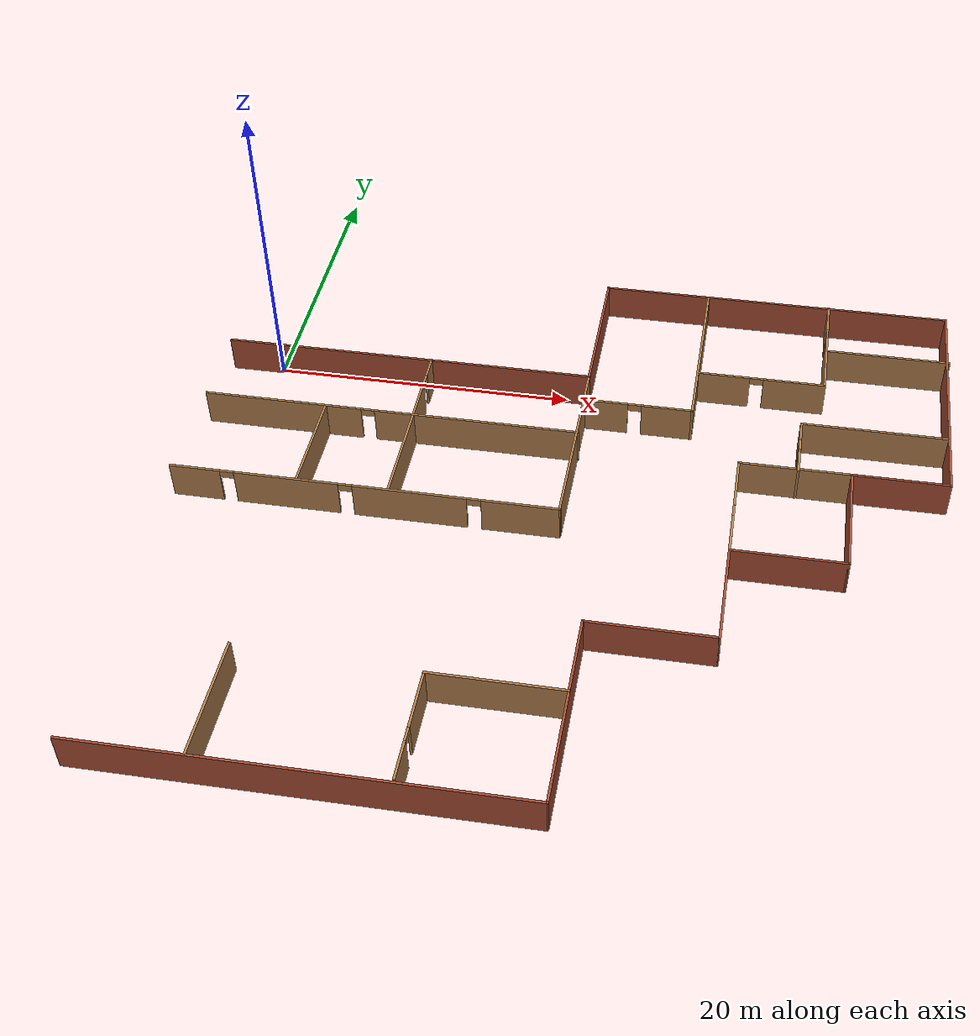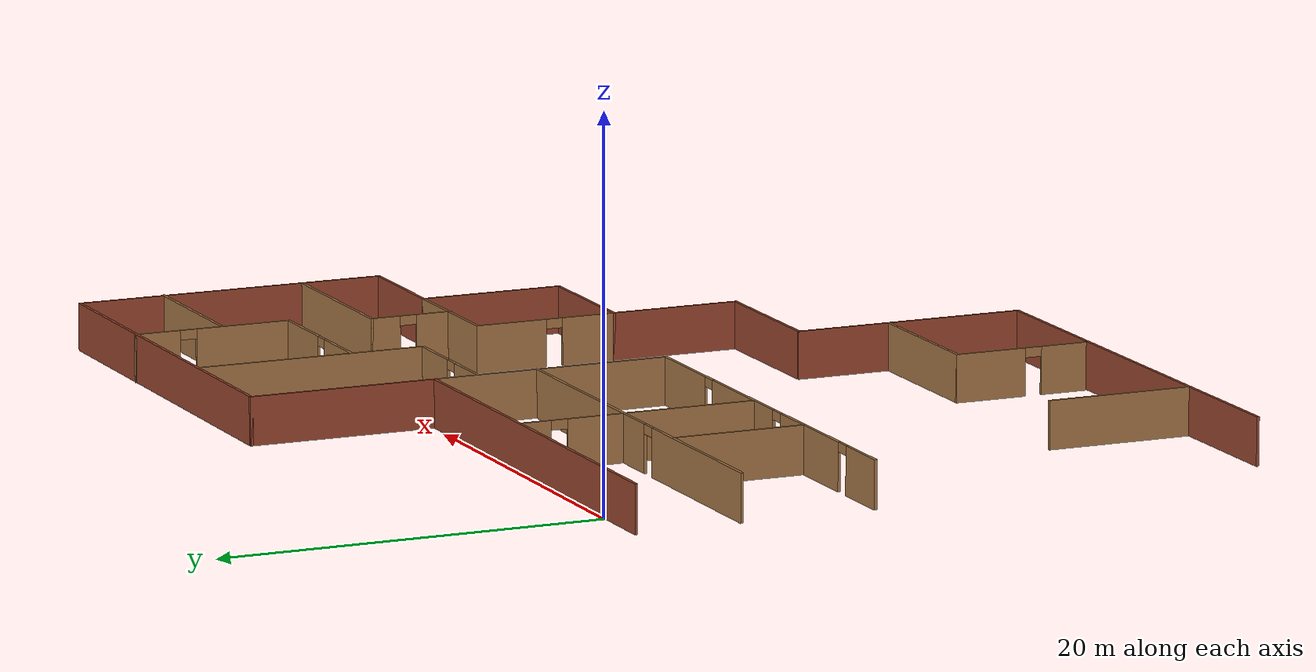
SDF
<sdf version="1.6">
 <model name="My_building">
  <pose>11.044 -12.0312 0 0 -0 0</pose>
  <link name="Wall_104">
   <collision name="Wall_104_Collision">
    <geometry><box><size>7.25 0.15 2.5</size></box></geometry>
    <pose>0 0 1.25 0 -0 0</pose>
   </collision>
   <visual name="Wall_104_Visual">
    <pose>0 0 1.25 0 -0 0</pose>
    <geometry><box><size>7.25 0.15 2.5</size></box></geometry>
    <material>
     <script><uri>file://media/materials/scripts/gazebo.material</uri><name>Gazebo/Bricks</name></script>
     <ambient>0.333333 1 1 1</ambient>
    </material>
    <meta><layer>0</layer></meta>
   </visual>
   <pose>24.508 -2.47483 0 0 -0 0</pose>
  </link>
  <link name="Wall_105">
   <collision name="Wall_105_Collision">
    <geometry><box><size>7.75 0.15 2.5</size></box></geometry>
    <pose>0 0 1.25 0 -0 0</pose>
   </collision>
   <visual name="Wall_105_Visual">
    <pose>0 0 1.25 0 -0 0</pose>
    <geometry><box><size>7.75 0.15 2.5</size></box></geometry>
    <material>
     <script><uri>file://media/materials/scripts/gazebo.material</uri><name>Gazebo/Bricks</name></script>
     <ambient>0.333333 1 1 1</ambient>
    </material>
    <meta><layer>0</layer></meta>
   </visual>
   <pose>28.058 1.32517 0 0 -0 1.5708</pose>
  </link>
  <link name="Wall_106">
   <collision name="Wall_106_Collision">
    <geometry><box><size>6.25 0.15 2.5</size></box></geometry>
    <pose>0 0 1.25 0 -0 0</pose>
   </collision>
   <visual name="Wall_106_Visual">
    <pose>0 0 1.25 0 -0 0</pose>
    <geometry><box><size>6.25 0.15 2.5</size></box></geometry>
    <material>
     <script><uri>file://media/materials/scripts/gazebo.material</uri><name>Gazebo/Bricks</name></script>
     <ambient>0.333333 1 1 1</ambient>
    </material>
    <meta><layer>0</layer></meta>
   </visual>
   <pose>31.108 5.12517 0 0 -0 0</pose>
  </link>
  <link name="Wall_107">
   <collision name="Wall_107_Collision">
    <geometry><box><size>16.75 0.15 2.5</size></box></geometry>
    <pose>0 0 1.25 0 -0 0</pose>
   </collision>
   <visual name="Wall_107_Visual">
    <pose>0 0 1.25 0 -0 0</pose>
    <geometry><box><size>16.75 0.15 2.5</size></box></geometry>
    <material>
     <script><uri>file://media/materials/scripts/gazebo.material</uri><name>Gazebo/Bricks</name></script>
     <ambient>0.333333 1 1 1</ambient>
    </material>
    <meta><layer>0</layer></meta>
   </visual>
   <pose>34.158 13.4252 0 0 -0 1.5708</pose>
  </link>
  <link name="Wall_110">
   <collision name="Wall_110_Collision">
    <geometry><box><size>23.9 0.15 2.5</size></box></geometry>
    <pose>0 0 1.25 0 -0 0</pose>
   </collision>
   <visual name="Wall_110_Visual">
    <pose>0 0 1.25 0 -0 0</pose>
    <geometry><box><size>23.9 0.15 2.5</size></box></geometry>
    <material>
     <script><uri>file://media/materials/scripts/gazebo.material</uri><name>Gazebo/Bricks</name></script>
     <ambient>0.333333 1 1 1</ambient>
    </material>
    <meta><layer>0</layer></meta>
   </visual>
   <pose>22.283 21.7252 0 0 -0 0</pose>
  </link>
  <link name="Wall_115">
   <collision name="Wall_115_Collision">
    <geometry><box><size>12.75 0.15 2.5</size></box></geometry>
    <pose>0 0 1.25 0 -0 0</pose>
   </collision>
   <visual name="Wall_115_Visual">
    <pose>0 0 1.25 0 -0 0</pose>
    <geometry><box><size>12.75 0.15 2.5</size></box></geometry>
    <material>
     <script><uri>file://media/materials/scripts/gazebo.material</uri><name>Gazebo/Wood</name></script>
     <ambient>0.435294 0.796078 0.67451 1</ambient>
    </material>
    <meta><layer>0</layer></meta>
   </visual>
   <pose>10.408 5.57517 0 0 0 -1.5708</pose>
  </link>
  <link name="Wall_120">
   <pose>-2.017 -0.724831 0 0 -0 0</pose>
   <visual name="Wall_120_Visual_0">
    <pose>-10.8536 0 1.25 0 -0 0</pose>
    <geometry><box><size>3.29273 0.15 2.5</size></box></geometry>
    <material>
     <script><uri>file://media/materials/scripts/gazebo.material</uri><name>Gazebo/Wood</name></script>
     <ambient>0.435294 0.796078 0.67451 1</ambient>
    </material>
    <meta><layer>0</layer></meta>
   </visual>
   <collision name="Wall_120_Collision_0">
    <geometry><box><size>3.29273 0.15 2.5</size></box></geometry>
    <pose>-10.8536 0 1.25 0 -0 0</pose>
   </collision>
   <visual name="Wall_120_Visual_1">
    <pose>-4.93656 0 1.25 0 -0 0</pose>
    <geometry><box><size>6.74143 0.15 2.5</size></box></geometry>
    <material>
     <script><uri>file://media/materials/scripts/gazebo.material</uri><name>Gazebo/Wood</name></script>
     <ambient>0.435294 0.796078 0.67451 1</ambient>
    </material>
    <meta><layer>0</layer></meta>
   </visual>
   <collision name="Wall_120_Collision_1">
    <geometry><box><size>6.74143 0.15 2.5</size></box></geometry>
    <pose>-4.93656 0 1.25 0 -0 0</pose>
   </collision>
   <visual name="Wall_120_Visual_2">
    <pose>2.97536 0 1.25 0 -0 0</pose>
    <geometry><box><size>7.28242 0.15 2.5</size></box></geometry>
    <material>
     <script><uri>file://media/materials/scripts/gazebo.material</uri><name>Gazebo/Wood</name></script>
     <ambient>0.435294 0.796078 0.67451 1</ambient>
    </material>
    <meta><layer>0</layer></meta>
   </visual>
   <collision name="Wall_120_Collision_2">
    <geometry><box><size>7.28242 0.15 2.5</size></box></geometry>
    <pose>2.97536 0 1.25 0 -0 0</pose>
   </collision>
   <visual name="Wall_120_Visual_3">
    <pose>10.0083 0 1.25 0 -0 0</pose>
    <geometry><box><size>4.98343 0.15 2.5</size></box></geometry>
    <material>
     <script><uri>file://media/materials/scripts/gazebo.material</uri><name>Gazebo/Wood</name></script>
     <ambient>0.435294 0.796078 0.67451 1</ambient>
    </material>
    <meta><layer>0</layer></meta>
   </visual>
   <collision name="Wall_120_Collision_3">
    <geometry><box><size>4.98343 0.15 2.5</size></box></geometry>
    <pose>10.0083 0 1.25 0 -0 0</pose>
   </collision>
   <visual name="Wall_120_Visual_4">
    <pose>-8.75727 0 2.25 0 -0 0</pose>
    <geometry><box><size>0.9 0.15 0.5</size></box></geometry>
    <material>
     <script><uri>file://media/materials/scripts/gazebo.material</uri><name>Gazebo/Wood</name></script>
     <ambient>0.435294 0.796078 0.67451 1</ambient>
    </material>
    <meta><layer>0</layer></meta>
   </visual>
   <collision name="Wall_120_Collision_4">
    <geometry><box><size>0.9 0.15 0.5</size></box></geometry>
    <pose>-8.75727 0 2.25 0 -0 0</pose>
   </collision>
   <visual name="Wall_120_Visual_5">
    <pose>-1.11584 0 2.25 0 -0 0</pose>
    <geometry><box><size>0.9 0.15 0.5</size></box></geometry>
    <material>
     <script><uri>file://media/materials/scripts/gazebo.material</uri><name>Gazebo/Wood</name></script>
     <ambient>0.435294 0.796078 0.67451 1</ambient>
    </material>
    <meta><layer>0</layer></meta>
   </visual>
   <collision name="Wall_120_Collision_5">
    <geometry><box><size>0.9 0.15 0.5</size></box></geometry>
    <pose>-1.11584 0 2.25 0 -0 0</pose>
   </collision>
   <visual name="Wall_120_Visual_6">
    <pose>7.06657 0 2.25 0 -0 0</pose>
    <geometry><box><size>0.9 0.15 0.5</size></box></geometry>
    <material>
     <script><uri>file://media/materials/scripts/gazebo.material</uri><name>Gazebo/Wood</name></script>
     <ambient>0.435294 0.796078 0.67451 1</ambient>
    </material>
    <meta><layer>0</layer></meta>
   </visual>
   <collision name="Wall_120_Collision_6">
    <geometry><box><size>0.9 0.15 0.5</size></box></geometry>
    <pose>7.06657 0 2.25 0 -0 0</pose>
   </collision>
  </link>
  <link name="Wall_122">
   <pose>-1.93956 6.30992 0 0 -0 0</pose>
   <visual name="Wall_122_Visual_0">
    <pose>-7.21918 0 1.25 0 -0 0</pose>
    <geometry><box><size>10.5616 0.15 2.5</size></box></geometry>
    <material>
     <script><uri>file://media/materials/scripts/gazebo.material</uri><name>Gazebo/Wood</name></script>
     <ambient>0.435294 0.796078 0.67451 1</ambient>
    </material>
    <meta><layer>0</layer></meta>
   </visual>
   <collision name="Wall_122_Collision_0">
    <geometry><box><size>10.5616 0.15 2.5</size></box></geometry>
    <pose>-7.21918 0 1.25 0 -0 0</pose>
   </collision>
   <visual name="Wall_122_Visual_1">
    <pose>5.73082 0 1.25 0 -0 0</pose>
    <geometry><box><size>13.5384 0.15 2.5</size></box></geometry>
    <material>
     <script><uri>file://media/materials/scripts/gazebo.material</uri><name>Gazebo/Wood</name></script>
     <ambient>0.435294 0.796078 0.67451 1</ambient>
    </material>
    <meta><layer>0</layer></meta>
   </visual>
   <collision name="Wall_122_Collision_1">
    <geometry><box><size>13.5384 0.15 2.5</size></box></geometry>
    <pose>5.73082 0 1.25 0 -0 0</pose>
   </collision>
   <visual name="Wall_122_Visual_2">
    <pose>-1.48836 0 2.25 0 -0 0</pose>
    <geometry><box><size>0.9 0.15 0.5</size></box></geometry>
    <material>
     <script><uri>file://media/materials/scripts/gazebo.material</uri><name>Gazebo/Wood</name></script>
     <ambient>0.435294 0.796078 0.67451 1</ambient>
    </material>
    <meta><layer>0</layer></meta>
   </visual>
   <collision name="Wall_122_Collision_2">
    <geometry><box><size>0.9 0.15 0.5</size></box></geometry>
    <pose>-1.48836 0 2.25 0 -0 0</pose>
   </collision>
  </link>
  <link name="Wall_124">
   <collision name="Wall_124_Collision">
    <geometry><box><size>7 0.15 2.5</size></box></geometry>
    <pose>0 0 1.25 0 -0 0</pose>
   </collision>
   <visual name="Wall_124_Visual">
    <pose>0 0 1.25 0 -0 0</pose>
    <geometry><box><size>7 0.15 2.5</size></box></geometry>
    <material>
     <script><uri>file://media/materials/scripts/gazebo.material</uri><name>Gazebo/Wood</name></script>
     <ambient>0.435294 0.796078 0.67451 1</ambient>
    </material>
    <meta><layer>0</layer></meta>
   </visual>
   <pose>-0.391735 2.74657 0 0 0 -1.5708</pose>
  </link>
  <link name="Wall_126">
   <collision name="Wall_126_Collision">
    <geometry><box><size>7 0.15 2.5</size></box></geometry>
    <pose>0 0 1.25 0 -0 0</pose>
   </collision>
   <visual name="Wall_126_Visual">
    <pose>0 0 1.25 0 -0 0</pose>
    <geometry><box><size>7 0.15 2.5</size></box></geometry>
    <material>
     <script><uri>file://media/materials/scripts/gazebo.material</uri><name>Gazebo/Wood</name></script>
     <ambient>0.435294 0.796078 0.67451 1</ambient>
    </material>
    <meta><layer>0</layer></meta>
   </visual>
   <pose>-6.27139 2.81575 0 0 0 -1.5708</pose>
  </link>
  <link name="Wall_130">
   <pose>-0.391735 9.12326 0 0 -0 1.5708</pose>
   <visual name="Wall_130_Visual_0">
    <pose>-1.25641 0 1.25 0 -0 0</pose>
    <geometry><box><size>2.98718 0.15 2.5</size></box></geometry>
    <material>
     <script><uri>file://media/materials/scripts/gazebo.material</uri><name>Gazebo/Wood</name></script>
     <ambient>0.435294 0.796078 0.67451 1</ambient>
    </material>
    <meta><layer>0</layer></meta>
   </visual>
   <collision name="Wall_130_Collision_0">
    <geometry><box><size>2.98718 0.15 2.5</size></box></geometry>
    <pose>-1.25641 0 1.25 0 -0 0</pose>
   </collision>
   <visual name="Wall_130_Visual_1">
    <pose>1.94359 0 1.25 0 -0 0</pose>
    <geometry><box><size>1.61282 0.15 2.5</size></box></geometry>
    <material>
     <script><uri>file://media/materials/scripts/gazebo.material</uri><name>Gazebo/Wood</name></script>
     <ambient>0.435294 0.796078 0.67451 1</ambient>
    </material>
    <meta><layer>0</layer></meta>
   </visual>
   <collision name="Wall_130_Collision_1">
    <geometry><box><size>1.61282 0.15 2.5</size></box></geometry>
    <pose>1.94359 0 1.25 0 -0 0</pose>
   </collision>
   <visual name="Wall_130_Visual_2">
    <pose>0.687178 0 2.25 0 -0 0</pose>
    <geometry><box><size>0.9 0.15 0.5</size></box></geometry>
    <material>
     <script><uri>file://media/materials/scripts/gazebo.material</uri><name>Gazebo/Wood</name></script>
     <ambient>0.435294 0.796078 0.67451 1</ambient>
    </material>
    <meta><layer>0</layer></meta>
   </visual>
   <collision name="Wall_130_Collision_2">
    <geometry><box><size>0.9 0.15 0.5</size></box></geometry>
    <pose>0.687178 0 2.25 0 -0 0</pose>
   </collision>
  </link>
  <link name="Wall_183">
   <collision name="Wall_183_Collision">
    <geometry><box><size>26.9002 0.15 2.5</size></box></geometry>
    <pose>0 0 1.25 0 -0 0</pose>
   </collision>
   <visual name="Wall_183_Visual">
    <pose>0 0 1.25 0 -0 0</pose>
    <geometry><box><size>26.9002 0.15 2.5</size></box></geometry>
    <material>
     <script><uri>file://media/materials/scripts/gazebo.material</uri><name>Gazebo/Bricks</name></script>
     <ambient>0.333333 1 1 1</ambient>
    </material>
    <meta><layer>0</layer></meta>
   </visual>
   <pose>-0.267003 -21.7248 0 0 -0 0.003738</pose>
  </link>
  <link name="Wall_186">
   <collision name="Wall_186_Collision">
    <geometry><box><size>7.75 0.15 2.5</size></box></geometry>
    <pose>0 0 1.25 0 -0 0</pose>
   </collision>
   <visual name="Wall_186_Visual">
    <pose>0 0 1.25 0 -0 0</pose>
    <geometry><box><size>7.75 0.15 2.5</size></box></geometry>
    <material>
     <script><uri>file://media/materials/scripts/gazebo.material</uri><name>Gazebo/Wood</name></script>
     <ambient>0.760784 0.662745 0.627451 1</ambient>
    </material>
    <meta><layer>0</layer></meta>
   </visual>
   <pose>-6.32539 -17.8695 0 0 0 -1.5708</pose>
  </link>
  <link name="Wall_190">
   <pose>20.958 1.32517 0 0 -0 1.5708</pose>
   <visual name="Wall_190_Visual_0">
    <pose>-2.39061 0 1.25 0 -0 0</pose>
    <geometry><box><size>2.96878 0.15 2.5</size></box></geometry>
    <material>
     <script><uri>file://media/materials/scripts/gazebo.material</uri><name>Gazebo/Wood</name></script>
     <ambient>1 1 0 1</ambient>
    </material>
    <meta><layer>0</layer></meta>
   </visual>
   <collision name="Wall_190_Collision_0">
    <geometry><box><size>2.96878 0.15 2.5</size></box></geometry>
    <pose>-2.39061 0 1.25 0 -0 0</pose>
   </collision>
   <visual name="Wall_190_Visual_1">
    <pose>1.93439 0 1.25 0 -0 0</pose>
    <geometry><box><size>3.88122 0.15 2.5</size></box></geometry>
    <material>
     <script><uri>file://media/materials/scripts/gazebo.material</uri><name>Gazebo/Wood</name></script>
     <ambient>1 1 0 1</ambient>
    </material>
    <meta><layer>0</layer></meta>
   </visual>
   <collision name="Wall_190_Collision_1">
    <geometry><box><size>3.88122 0.15 2.5</size></box></geometry>
    <pose>1.93439 0 1.25 0 -0 0</pose>
   </collision>
   <visual name="Wall_190_Visual_2">
    <pose>-0.456219 0 2.25 0 -0 0</pose>
    <geometry><box><size>0.9 0.15 0.5</size></box></geometry>
    <material>
     <script><uri>file://media/materials/scripts/gazebo.material</uri><name>Gazebo/Wood</name></script>
     <ambient>1 1 0 1</ambient>
    </material>
    <meta><layer>0</layer></meta>
   </visual>
   <collision name="Wall_190_Collision_2">
    <geometry><box><size>0.9 0.15 0.5</size></box></geometry>
    <pose>-0.456219 0 2.25 0 -0 0</pose>
   </collision>
  </link>
  <link name="Wall_192">
   <collision name="Wall_192_Collision">
    <geometry><box><size>7.25 0.15 2.5</size></box></geometry>
    <pose>0 0 1.25 0 -0 0</pose>
   </collision>
   <visual name="Wall_192_Visual">
    <pose>0 0 1.25 0 -0 0</pose>
    <geometry><box><size>7.25 0.15 2.5</size></box></geometry>
    <material>
     <script><uri>file://media/materials/scripts/gazebo.material</uri><name>Gazebo/Wood</name></script>
     <ambient>1 1 0 1</ambient>
    </material>
    <meta><layer>0</layer></meta>
   </visual>
   <pose>24.508 5.12517 0 0 -0 0</pose>
  </link>
  <link name="Wall_196">
   <pose>4.97312 -17.9193 0 0 -0 1.5708</pose>
   <visual name="Wall_196_Visual_0">
    <pose>-2.36842 0 1.25 0 -0 0</pose>
    <geometry><box><size>2.51317 0.15 2.5</size></box></geometry>
    <material>
     <script><uri>file://media/materials/scripts/gazebo.material</uri><name>Gazebo/Wood</name></script>
     <ambient>0.760784 0.662745 0.627451 1</ambient>
    </material>
    <meta><layer>0</layer></meta>
   </visual>
   <collision name="Wall_196_Collision_0">
    <geometry><box><size>2.51317 0.15 2.5</size></box></geometry>
    <pose>-2.36842 0 1.25 0 -0 0</pose>
   </collision>
   <visual name="Wall_196_Visual_1">
    <pose>1.70659 0 1.25 0 -0 0</pose>
    <geometry><box><size>3.83683 0.15 2.5</size></box></geometry>
    <material>
     <script><uri>file://media/materials/scripts/gazebo.material</uri><name>Gazebo/Wood</name></script>
     <ambient>0.760784 0.662745 0.627451 1</ambient>
    </material>
    <meta><layer>0</layer></meta>
   </visual>
   <collision name="Wall_196_Collision_1">
    <geometry><box><size>3.83683 0.15 2.5</size></box></geometry>
    <pose>1.70659 0 1.25 0 -0 0</pose>
   </collision>
   <visual name="Wall_196_Visual_2">
    <pose>-0.661831 0 2.25 0 -0 0</pose>
    <geometry><box><size>0.9 0.15 0.5</size></box></geometry>
    <material>
     <script><uri>file://media/materials/scripts/gazebo.material</uri><name>Gazebo/Wood</name></script>
     <ambient>0.760784 0.662745 0.627451 1</ambient>
    </material>
    <meta><layer>0</layer></meta>
   </visual>
   <collision name="Wall_196_Collision_2">
    <geometry><box><size>0.9 0.15 0.5</size></box></geometry>
    <pose>-0.661831 0 2.25 0 -0 0</pose>
   </collision>
  </link>
  <link name="Wall_197">
   <collision name="Wall_197_Collision">
    <geometry><box><size>8.25 0.15 2.5</size></box></geometry>
    <pose>0 0 1.25 0 -0 0</pose>
   </collision>
   <visual name="Wall_197_Visual">
    <pose>0 0 1.25 0 -0 0</pose>
    <geometry><box><size>8.25 0.15 2.5</size></box></geometry>
    <material>
     <script><uri>file://media/materials/scripts/gazebo.material</uri><name>Gazebo/Wood</name></script>
     <ambient>0.760784 0.662745 0.627451 1</ambient>
    </material>
    <meta><layer>0</layer></meta>
   </visual>
   <pose>9.02312 -14.3693 0 0 -0 0</pose>
  </link>
  <link name="Wall_200">
   <collision name="Wall_200_Collision">
    <geometry><box><size>12.5 0.15 2.5</size></box></geometry>
    <pose>0 0 1.25 0 -0 0</pose>
   </collision>
   <visual name="Wall_200_Visual">
    <pose>0 0 1.25 0 -0 0</pose>
    <geometry><box><size>12.5 0.15 2.5</size></box></geometry>
    <material>
     <script><uri>file://media/materials/scripts/gazebo.material</uri><name>Gazebo/Bricks</name></script>
     <ambient>0.333333 1 1 1</ambient>
    </material>
    <meta><layer>0</layer></meta>
   </visual>
   <pose>13.108 -15.4998 0 0 -0 1.5708</pose>
  </link>
  <link name="Wall_205">
   <collision name="Wall_205_Collision">
    <geometry><box><size>7 0.15 2.5</size></box></geometry>
    <pose>0 0 1.25 0 -0 0</pose>
   </collision>
   <visual name="Wall_205_Visual">
    <pose>0 0 1.25 0 -0 0</pose>
    <geometry><box><size>7 0.15 2.5</size></box></geometry>
    <material>
     <script><uri>file://media/materials/scripts/gazebo.material</uri><name>Gazebo/Bricks</name></script>
     <ambient>0.333333 1 1 1</ambient>
    </material>
    <meta><layer>0</layer></meta>
   </visual>
   <pose>20.958 -5.89983 0 0 0 -1.5708</pose>
  </link>
  <link name="Wall_207">
   <collision name="Wall_207_Collision">
    <geometry><box><size>8 0.15 2.5</size></box></geometry>
    <pose>0 0 1.25 0 -0 0</pose>
   </collision>
   <visual name="Wall_207_Visual">
    <pose>0 0 1.25 0 -0 0</pose>
    <geometry><box><size>8 0.15 2.5</size></box></geometry>
    <material>
     <script><uri>file://media/materials/scripts/gazebo.material</uri><name>Gazebo/Bricks</name></script>
     <ambient>0.333333 1 1 1</ambient>
    </material>
    <meta><layer>0</layer></meta>
   </visual>
   <pose>17.033 -9.32483 0 0 -0 0</pose>
  </link>
  <link name="Wall_232">
   <pose>14.0255 9.52883 0 0 -0 0</pose>
   <visual name="Wall_232_Visual_0">
    <pose>-2.16007 0 1.25 0 -0 0</pose>
    <geometry><box><size>2.92986 0.15 2.5</size></box></geometry>
    <material>
     <script><uri>file://media/materials/scripts/gazebo.material</uri><name>Gazebo/Wood</name></script>
     <ambient>0.996078 0.47451 0.0196078 1</ambient>
    </material>
    <meta><layer>0</layer></meta>
   </visual>
   <collision name="Wall_232_Collision_0">
    <geometry><box><size>2.92986 0.15 2.5</size></box></geometry>
    <pose>-2.16007 0 1.25 0 -0 0</pose>
   </collision>
   <visual name="Wall_232_Visual_1">
    <pose>1.91493 0 1.25 0 -0 0</pose>
    <geometry><box><size>3.42014 0.15 2.5</size></box></geometry>
    <material>
     <script><uri>file://media/materials/scripts/gazebo.material</uri><name>Gazebo/Wood</name></script>
     <ambient>0.996078 0.47451 0.0196078 1</ambient>
    </material>
    <meta><layer>0</layer></meta>
   </visual>
   <collision name="Wall_232_Collision_1">
    <geometry><box><size>3.42014 0.15 2.5</size></box></geometry>
    <pose>1.91493 0 1.25 0 -0 0</pose>
   </collision>
   <visual name="Wall_232_Visual_2">
    <pose>-0.245138 0 2.25 0 -0 0</pose>
    <geometry><box><size>0.9 0.15 0.5</size></box></geometry>
    <material>
     <script><uri>file://media/materials/scripts/gazebo.material</uri><name>Gazebo/Wood</name></script>
     <ambient>0.996078 0.47451 0.0196078 1</ambient>
    </material>
    <meta><layer>0</layer></meta>
   </visual>
   <collision name="Wall_232_Collision_2">
    <geometry><box><size>0.9 0.15 0.5</size></box></geometry>
    <pose>-0.245138 0 2.25 0 -0 0</pose>
   </collision>
  </link>
  <link name="Wall_233">
   <collision name="Wall_233_Collision">
    <geometry><box><size>12.25 0.15 2.5</size></box></geometry>
    <pose>0 0 1.25 0 -0 0</pose>
   </collision>
   <visual name="Wall_233_Visual">
    <pose>0 0 1.25 0 -0 0</pose>
    <geometry><box><size>12.25 0.15 2.5</size></box></geometry>
    <material>
     <script><uri>file://media/materials/scripts/gazebo.material</uri><name>Gazebo/Wood</name></script>
     <ambient>0.996078 0.47451 0.0196078 1</ambient>
    </material>
    <meta><layer>0</layer></meta>
   </visual>
   <pose>17.5755 15.5788 0 0 -0 1.5708</pose>
  </link>
  <link name="Wall_235">
   <pose>21.875 13.4251 0 0 -0 0</pose>
   <visual name="Wall_235_Visual_0">
    <pose>-2.52091 0 1.25 0 -0 0</pose>
    <geometry><box><size>3.45818 0.15 2.5</size></box></geometry>
    <material>
     <script><uri>file://media/materials/scripts/gazebo.material</uri><name>Gazebo/Wood</name></script>
     <ambient>0.996078 0.47451 0.0196078 1</ambient>
    </material>
    <meta><layer>0</layer></meta>
   </visual>
   <collision name="Wall_235_Collision_0">
    <geometry><box><size>3.45818 0.15 2.5</size></box></geometry>
    <pose>-2.52091 0 1.25 0 -0 0</pose>
   </collision>
   <visual name="Wall_235_Visual_1">
    <pose>2.17909 0 1.25 0 -0 0</pose>
    <geometry><box><size>4.14182 0.15 2.5</size></box></geometry>
    <material>
     <script><uri>file://media/materials/scripts/gazebo.material</uri><name>Gazebo/Wood</name></script>
     <ambient>0.996078 0.47451 0.0196078 1</ambient>
    </material>
    <meta><layer>0</layer></meta>
   </visual>
   <collision name="Wall_235_Collision_1">
    <geometry><box><size>4.14182 0.15 2.5</size></box></geometry>
    <pose>2.17909 0 1.25 0 -0 0</pose>
   </collision>
   <visual name="Wall_235_Visual_2">
    <pose>-0.34182 0 2.25 0 -0 0</pose>
    <geometry><box><size>0.9 0.15 0.5</size></box></geometry>
    <material>
     <script><uri>file://media/materials/scripts/gazebo.material</uri><name>Gazebo/Wood</name></script>
     <ambient>0.996078 0.47451 0.0196078 1</ambient>
    </material>
    <meta><layer>0</layer></meta>
   </visual>
   <collision name="Wall_235_Collision_2">
    <geometry><box><size>0.9 0.15 0.5</size></box></geometry>
    <pose>-0.34182 0 2.25 0 -0 0</pose>
   </collision>
  </link>
  <link name="Wall_236">
   <pose>26.05 17.6001 0 0 -0 1.5708</pose>
   <visual name="Wall_236_Visual_0">
    <pose>-1.67061 0 1.25 0 -0 0</pose>
    <geometry><box><size>5.15877 0.15 2.5</size></box></geometry>
    <material>
     <script><uri>file://media/materials/scripts/gazebo.material</uri><name>Gazebo/Wood</name></script>
     <ambient>1 1 1 1</ambient>
    </material>
    <meta><layer>0</layer></meta>
   </visual>
   <collision name="Wall_236_Collision_0">
    <geometry><box><size>5.15877 0.15 2.5</size></box></geometry>
    <pose>-1.67061 0 1.25 0 -0 0</pose>
   </collision>
   <visual name="Wall_236_Visual_1">
    <pose>3.02939 0 1.25 0 -0 0</pose>
    <geometry><box><size>2.44123 0.15 2.5</size></box></geometry>
    <material>
     <script><uri>file://media/materials/scripts/gazebo.material</uri><name>Gazebo/Wood</name></script>
     <ambient>1 1 1 1</ambient>
    </material>
    <meta><layer>0</layer></meta>
   </visual>
   <collision name="Wall_236_Collision_1">
    <geometry><box><size>2.44123 0.15 2.5</size></box></geometry>
    <pose>3.02939 0 1.25 0 -0 0</pose>
   </collision>
   <visual name="Wall_236_Visual_2">
    <pose>1.35877 0 2.25 0 -0 0</pose>
    <geometry><box><size>0.9 0.15 0.5</size></box></geometry>
    <material>
     <script><uri>file://media/materials/scripts/gazebo.material</uri><name>Gazebo/Wood</name></script>
     <ambient>1 1 1 1</ambient>
    </material>
    <meta><layer>0</layer></meta>
   </visual>
   <collision name="Wall_236_Collision_2">
    <geometry><box><size>0.9 0.15 0.5</size></box></geometry>
    <pose>1.35877 0 2.25 0 -0 0</pose>
   </collision>
  </link>
  <link name="Wall_238">
   <collision name="Wall_238_Collision">
    <geometry><box><size>8.25 0.15 2.5</size></box></geometry>
    <pose>0 0 1.25 0 -0 0</pose>
   </collision>
   <visual name="Wall_238_Visual">
    <pose>0 0 1.25 0 -0 0</pose>
    <geometry><box><size>8.25 0.15 2.5</size></box></geometry>
    <material>
     <script><uri>file://media/materials/scripts/gazebo.material</uri><name>Gazebo/Wood</name></script>
     <ambient>0.996078 0.47451 0.0196078 1</ambient>
    </material>
    <meta><layer>0</layer></meta>
   </visual>
   <pose>30.242 17.0773 0 0 -0 0</pose>
  </link>
  <link name="Wall_244">
   <pose>24.704 7.23189 0 0 -0 1.5708</pose>
   <visual name="Wall_244_Visual_0">
    <pose>-1.26712 0 1.25 0 -0 0</pose>
    <geometry><box><size>1.96576 0.15 2.5</size></box></geometry>
    <material>
     <script><uri>file://media/materials/scripts/gazebo.material</uri><name>Gazebo/Wood</name></script>
     <ambient>1 1 0 1</ambient>
    </material>
    <meta><layer>0</layer></meta>
   </visual>
   <collision name="Wall_244_Collision_0">
    <geometry><box><size>1.96576 0.15 2.5</size></box></geometry>
    <pose>-1.26712 0 1.25 0 -0 0</pose>
   </collision>
   <visual name="Wall_244_Visual_1">
    <pose>1.43288 0 1.25 0 -0 0</pose>
    <geometry><box><size>1.63424 0.15 2.5</size></box></geometry>
    <material>
     <script><uri>file://media/materials/scripts/gazebo.material</uri><name>Gazebo/Wood</name></script>
     <ambient>1 1 0 1</ambient>
    </material>
    <meta><layer>0</layer></meta>
   </visual>
   <collision name="Wall_244_Collision_1">
    <geometry><box><size>1.63424 0.15 2.5</size></box></geometry>
    <pose>1.43288 0 1.25 0 -0 0</pose>
   </collision>
   <visual name="Wall_244_Visual_2">
    <pose>0.165758 0 2.25 0 -0 0</pose>
    <geometry><box><size>0.9 0.15 0.5</size></box></geometry>
    <material>
     <script><uri>file://media/materials/scripts/gazebo.material</uri><name>Gazebo/Wood</name></script>
     <ambient>1 1 0 1</ambient>
    </material>
    <meta><layer>0</layer></meta>
   </visual>
   <collision name="Wall_244_Collision_2">
    <geometry><box><size>0.9 0.15 0.5</size></box></geometry>
    <pose>0.165758 0 2.25 0 -0 0</pose>
   </collision>
  </link>
  <link name="Wall_245">
   <collision name="Wall_245_Collision">
    <geometry><box><size>9.5 0.15 2.5</size></box></geometry>
    <pose>0 0 1.25 0 -0 0</pose>
   </collision>
   <visual name="Wall_245_Visual">
    <pose>0 0 1.25 0 -0 0</pose>
    <geometry><box><size>9.5 0.15 2.5</size></box></geometry>
    <material>
     <script><uri>file://media/materials/scripts/gazebo.material</uri><name>Gazebo/Wood</name></script>
     <ambient>1 1 1 1</ambient>
    </material>
    <meta><layer>0</layer></meta>
   </visual>
   <pose>29.379 9.40689 0 0 -0 0</pose>
  </link>
  <link name="Wall_74">
   <collision name="Wall_74_Collision">
    <geometry><box><size>25 0.15 2.5</size></box></geometry>
    <pose>0 0 1.25 0 -0 0</pose>
   </collision>
   <visual name="Wall_74_Visual">
    <pose>0 0 1.25 0 -0 0</pose>
    <geometry><box><size>25 0.15 2.5</size></box></geometry>
    <material>
     <script><uri>file://media/materials/scripts/gazebo.material</uri><name>Gazebo/Bricks</name></script>
     <ambient>0.333333 1 1 1</ambient>
    </material>
    <meta><layer>0</layer></meta>
   </visual>
   <pose>-2.017 11.8752 0 0 -0 0</pose>
  </link>
  <link name="Wall_80">
   <collision name="Wall_80_Collision">
    <geometry><box><size>10 0.15 2.5</size></box></geometry>
    <pose>0 0 1.25 0 -0 0</pose>
   </collision>
   <visual name="Wall_80_Visual">
    <pose>0 0 1.25 0 -0 0</pose>
    <geometry><box><size>10 0.15 2.5</size></box></geometry>
    <material>
     <script><uri>file://media/materials/scripts/gazebo.material</uri><name>Gazebo/Bricks</name></script>
     <ambient>0.333333 1 1 1</ambient>
    </material>
    <meta><layer>0</layer></meta>
   </visual>
   <pose>10.408 16.8002 0 0 -0 1.5708</pose>
  </link>
  <static>1</static>
 </model>
</sdf>
